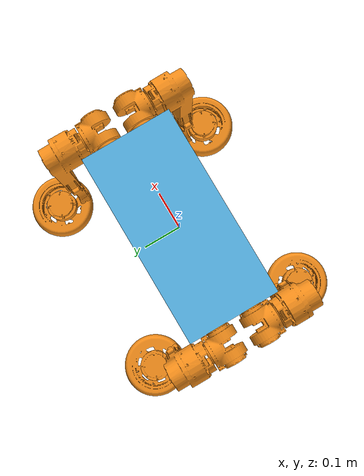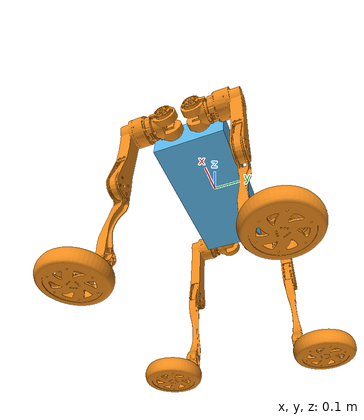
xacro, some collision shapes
<?xml version="1.0"?>

<robot xmlns:xacro="http://www.ros.org/wiki/xacro" name="sirius_wheel_description">

    <xacro:arg name="DEBUG" default="false"/>
    <xacro:include filename="$(find sirius_wheel_description)/xacro/materials.xacro"/>
    <xacro:include filename="$(find sirius_wheel_description)/xacro/leg_new_name.xacro"/>
    <xacro:include filename="$(find sirius_wheel_description)/xacro/gazebo.xacro"/>
    <xacro:include filename="$(find sirius_wheel_description)/xacro/const.xacro"/>
    <xacro:include filename="$(find sirius_wheel_description)/xacro/ros2_control.xacro"/>

    <xacro:if value="$(arg DEBUG)">
        <link name="world"/>
        <joint name="base_static_joint" type="fixed">
            <origin rpy="0 0 0" xyz="0 0 0"/>
            <parent link="world"/>
            <child link="base"/>
        </joint>
    </xacro:if>

    <link name="base">
        <visual>
            <origin rpy="0 0 0" xyz="0 0 0"/>
            <geometry>
                <box size="0.001 0.001 0.001"/>
            </geometry>
        </visual>
    </link>

    <joint name="floating_base" type="fixed">
        <origin rpy="0 0 0" xyz="0 0 0"/>
        <parent link="base"/>
        <child link="trunk"/>
    </joint>

    <link name="trunk">
        <visual>
            <origin rpy="0 0 0" xyz="-0 0 0"/>
            <geometry>
                <mesh filename="package://sirius_wheel_description/simplified_meshes/base_link.dae" scale="1 1 1"/>
            </geometry>
        </visual>
        <collision>
            <origin rpy="0 0 0" xyz="0 0 0"/>
            <geometry>
                <box size="${base_length} ${base_width} ${base_height}"/>
            </geometry>
        </collision>
        <collision>
            <origin rpy="0 0 0" xyz="0.418 0 0"/>
            <geometry>
                <box size="${base_head_length} ${base_head_width} ${base_head_height}"/>
            </geometry>
        </collision>
        <collision>
            <origin rpy="0 0 0" xyz="-0.4105 0 0"/>
            <geometry>
                <box size="${base_tail_length} ${base_tail_width} ${base_tail_height}"/>
            </geometry>
        </collision>
        <collision>
            <origin rpy="0 0 0" xyz="${base_contact_sphere_x} ${base_contact_sphere_y} ${base_contact_sphere_z}"/>
            <geometry>
                <sphere radius="${base_contact_sphere_radius}"/>
            </geometry>
        </collision>
        <collision>
            <origin rpy="0 0 0" xyz="${-base_contact_sphere_x} ${base_contact_sphere_y} ${base_contact_sphere_z}"/>
            <geometry>
                <sphere radius="${base_contact_sphere_radius}"/>
            </geometry>
        </collision>
        <collision>
            <origin rpy="0 0 0" xyz="${base_contact_sphere_x} ${-base_contact_sphere_y} ${base_contact_sphere_z}"/>
            <geometry>
                <sphere radius="${base_contact_sphere_radius}"/>
            </geometry>
        </collision>
        <collision>
            <origin rpy="0 0 0" xyz="${-base_contact_sphere_x} ${-base_contact_sphere_y} ${base_contact_sphere_z}"/>
            <geometry>
                <sphere radius="${base_contact_sphere_radius}"/>
            </geometry>
        </collision>

        <inertial>
            <origin rpy="0 0 0" xyz="${base_com_x} ${base_com_y} ${base_com_z}"/>
            <mass value="${base_mass}"/>
            <inertia
                    ixx="${base_ixx}" ixy="${base_ixy}" ixz="${base_ixz}"
                    iyy="${base_iyy}" iyz="${base_iyz}"
                    izz="${base_izz}"/>
        </inertial>
    </link>

    <joint name="imu_joint" type="fixed">
        <parent link="trunk"/>
        <child link="imu_link"/>
        <origin rpy="0 0 0" xyz="-0.01592 -0.06659 -0.00617"/>
    </joint>

    <link name="imu_link">
        <inertial>
            <mass value="0.001"/>
            <origin rpy="0 0 0" xyz="0 0 0"/>
            <inertia ixx="0.0001" ixy="0" ixz="0" iyy="0.0001" iyz="0" izz="0.0001"/>
        </inertial>
        <visual>
            <origin rpy="0 0 0" xyz="0 0 0"/>
            <geometry>
                <box size="0.001 0.001 0.001"/>
            </geometry>
        </visual>
        <collision>
            <origin rpy="0 0 0" xyz="0 0 0"/>
            <geometry>
                <box size=".001 .001 .001"/>
            </geometry>
        </collision>
    </link>

    <xacro:leg prefix="fr" left_right_bool="False" left_right_mirror="-1"
               front_hind_bool="True" front_hind_mirror="1">
        <origin rpy="0 0 0" xyz="${leg_origin_x} ${-leg_origin_y} 0"/>
    </xacro:leg>

    <xacro:leg prefix="fl" left_right_bool="True" left_right_mirror="1" front_hind_bool="True"
               front_hind_mirror="1">
        <origin rpy="0 0 0" xyz="${leg_origin_x} ${leg_origin_y} 0"/>
    </xacro:leg>

    <xacro:leg prefix="rr" left_right_bool="False" left_right_mirror="-1"
               front_hind_bool="False" front_hind_mirror="-1">
        <origin rpy="0 0 0" xyz="${-leg_origin_x} ${-leg_origin_y} 0"/>
    </xacro:leg>

    <xacro:leg prefix="rl" left_right_bool="True" left_right_mirror="1" front_hind_bool="False"
               front_hind_mirror="-1">
        <origin rpy="0 0 0" xyz="${-leg_origin_x} ${leg_origin_y} 0"/>
    </xacro:leg>

</robot>

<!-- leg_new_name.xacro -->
<robot xmlns:xacro="http://www.ros.org/wiki/xacro">
    <xacro:include filename="$(find sirius_wheel_description)/xacro/transmission.xacro"/>

    <!--    left for true, front for true-->
    <xacro:macro name="leg"
                 params="prefix left_right_bool front_hind_bool left_right_mirror front_hind_mirror *origin">

        <!--       *********************************** abad description *************8-->
        <joint name="${prefix}_abad_joint" type="revolute">
            <!--            insert start block from parent file-->
            <xacro:insert_block name="origin"/>
            <parent link="trunk"/>
            <child link="${prefix}_hip"/>
            <axis xyz="1 0 0"/>
            <dynamics damping="${damping}" friction="${friction}"/>
            <limit effort="${abad_torque_max}" velocity="${abad_velocity_max}" lower="${abad_position_min}"
                   upper="${abad_position_max}"/>
        </joint>

        <link name="${prefix}_hip">
            <visual>
                <origin rpy="0 0 0" xyz="0 0 0"/>
                <geometry>
                    <xacro:if value="${(left_right_bool == True) and (front_hind_bool == True)}">
                        <mesh filename="package://sirius_wheel_description/simplified_meshes/fl_abad_link.dae"
                              scale="1 1 1"/>
                    </xacro:if>
                    <xacro:if value="${(left_right_bool == False) and (front_hind_bool == True)}">
                        <mesh filename="package://sirius_wheel_description/simplified_meshes/fr_abad_link.dae"
                              scale="1 1 1"/>
                    </xacro:if>
                    <xacro:if value="${(left_right_bool == True) and (front_hind_bool == False)}">
                        <mesh filename="package://sirius_wheel_description/simplified_meshes/rl_abad_link.dae"
                              scale="1 1 1"/>
                    </xacro:if>
                    <xacro:if value="${(left_right_bool == False) and (front_hind_bool == False)}">
                        <mesh filename="package://sirius_wheel_description/simplified_meshes/rr_abad_link.dae"
                              scale="1 1 1"/>
                    </xacro:if>
                </geometry>
                <material name="orange"/>
            </visual>
                    <collision>
                        <origin rpy="${pi/2} 0 0"
                                   xyz="${abad_origin_x*front_hind_mirror} ${abad_origin_y*left_right_mirror} 0"/>
                        <geometry>
                            <cylinder length="${abad_length}" radius="${abad_radius}"/>
                        </geometry>
                    </collision>

            <!--            tochange here-->
            <inertial>
                <origin rpy="0 0 0"
                        xyz="${abad_com_x*front_hind_mirror} ${abad_com_y*left_right_mirror} ${abad_com_z}"/>
                <mass value="${abad_mass}"/>
                <inertia
                        ixx="${abad_ixx}" ixy="${abad_ixy*front_hind_mirror*left_right_mirror}"
                        ixz="${abad_ixz*front_hind_mirror}"
                        iyy="${abad_iyy}" iyz="${abad_iyz*left_right_mirror}"
                        izz="${abad_izz}"/>
            </inertial>
        </link>

        <!--        *************************************** hip description ******************************************************-->

        <joint name="${prefix}_hip_joint" type="revolute">
            <origin rpy="0 0 0" xyz="${hip_origin_x*front_hind_mirror} ${hip_origin_y*left_right_mirror} 0"/>
            <parent link="${prefix}_hip"/>
            <child link="${prefix}_thigh"/>
            <axis xyz="0 1 0"/>
            <dynamics damping="${damping}" friction="${friction}"/>
            <limit effort="${hip_torque_max}" velocity="${hip_velocity_max}" lower="${hip_position_min}"
                   upper="${hip_position_max}"/>
        </joint>

        <link name="${prefix}_thigh">
            <visual>
                <origin rpy="0 0 0" xyz="0 0 0"/>
                <geometry>
                    <xacro:if value="${(left_right_bool == True) and (front_hind_bool == True)}">
                        <mesh filename="package://sirius_wheel_description/simplified_meshes/fl_hip_link.dae"
                              scale="1 1 1"/>
                    </xacro:if>
                    <xacro:if value="${(left_right_bool == False) and (front_hind_bool == True)}">
                        <mesh filename="package://sirius_wheel_description/simplified_meshes/fr_hip_link.dae"
                              scale="1 1 1"/>
                    </xacro:if>
                    <xacro:if value="${(left_right_bool == True) and (front_hind_bool == False)}">
                        <mesh filename="package://sirius_wheel_description/simplified_meshes/rl_hip_link.dae"
                              scale="1 1 1"/>
                    </xacro:if>
                    <xacro:if value="${(left_right_bool == False) and (front_hind_bool == False)}">
                        <mesh filename="package://sirius_wheel_description/simplified_meshes/rr_hip_link.dae"
                              scale="1 1 1"/>
                    </xacro:if>
                </geometry>
                <material name="orange"/>
            </visual>

            <collision>
                <origin rpy="${pi/2} 0 0"
                        xyz="0 0 0"/>
                <geometry>
                    <cylinder length="${hip_shoulder_length}" radius="${hip_shoulder_radius}"/>
                </geometry>
            </collision>
            <collision>
                <origin rpy="${pi/2} 0 0"
                        xyz="0 ${hip_shoulder2_y_offset*left_right_mirror} 0"/>
                <geometry>
                    <cylinder length="${hip_shoulder2_length}" radius="${hip_shoulder2_radius}"/>
                </geometry>
            </collision>
            <collision>
                <origin rpy="0 ${(90)/180*pi} 0"
                        xyz="${hip_x_offset} 0 ${hip_z_offset}"/>
                <geometry>
                    <box size="${hip_length} ${hip_width} ${hip_height}"/>
                </geometry>
            </collision>

            <inertial>
                <origin rpy="0 0 0" xyz="${hip_com_x*front_hind_mirror} ${hip_com_y*left_right_mirror} ${hip_com_z}"/>
                <mass value="${hip_mass}"/>
                <inertia
                        ixx="${hip_ixx}" ixy="${hip_ixy*left_right_mirror}" ixz="${hip_ixz}"
                        iyy="${hip_iyy}" iyz="${hip_iyz*left_right_mirror}"
                        izz="${hip_izz}"/>
            </inertial>
        </link>

        <!--************************************************ knee description ***********************************************************8-->
        <joint name="${prefix}_knee_joint" type="revolute">
            <origin rpy="0 0 0"
                    xyz="${knee_origin_x*front_hind_mirror} ${knee_origin_y*left_right_mirror} ${knee_origin_z}"/>
            <parent link="${prefix}_thigh"/>
            <child link="${prefix}_calf"/>
            <axis xyz="0 1 0"/>
            <dynamics damping="${damping}" friction="${friction}"/>
            <limit effort="${knee_torque_max}" velocity="${knee_velocity_max}" lower="${knee_position_min}"
                   upper="${knee_position_max}"/>
        </joint>

        <link name="${prefix}_calf">
            <visual>
                <origin rpy="0 0 0" xyz="0 0 0"/>
                <geometry>
                    <xacro:if value="${(left_right_bool == True) and (front_hind_bool == True)}">
                        <mesh filename="package://sirius_wheel_description/simplified_meshes/fl_knee_link.dae"
                              scale="1 1 1"/>
                    </xacro:if>
                    <xacro:if value="${(left_right_bool == False) and (front_hind_bool == True)}">
                        <mesh filename="package://sirius_wheel_description/simplified_meshes/fr_knee_link.dae"
                              scale="1 1 1"/>
                    </xacro:if>
                    <xacro:if value="${(left_right_bool == True) and (front_hind_bool == False)}">
                        <mesh filename="package://sirius_wheel_description/simplified_meshes/rl_knee_link.dae"
                              scale="1 1 1"/>
                    </xacro:if>
                    <xacro:if value="${(left_right_bool == False) and (front_hind_bool == False)}">
                        <mesh filename="package://sirius_wheel_description/simplified_meshes/rr_knee_link.dae"
                              scale="1 1 1"/>
                    </xacro:if>
                </geometry>
                <material name="orange"/>
            </visual>
            <collision>
                <origin rpy="0 0 0" xyz="0 0 0"/>
                <geometry>
                    <xacro:if value="${(left_right_bool == True) and (front_hind_bool == True)}">
                        <mesh filename="package://sirius_wheel_description/simplified_meshes/fl_knee_link.dae"
                              scale="1 1 1"/>
                    </xacro:if>
                    <xacro:if value="${(left_right_bool == False) and (front_hind_bool == True)}">
                        <mesh filename="package://sirius_wheel_description/simplified_meshes/fr_knee_link.dae"
                              scale="1 1 1"/>
                    </xacro:if>
                    <xacro:if value="${(left_right_bool == True) and (front_hind_bool == False)}">
                        <mesh filename="package://sirius_wheel_description/simplified_meshes/rl_knee_link.dae"
                              scale="1 1 1"/>
                    </xacro:if>
                    <xacro:if value="${(left_right_bool == False) and (front_hind_bool == False)}">
                        <mesh filename="package://sirius_wheel_description/simplified_meshes/rr_knee_link.dae"
                              scale="1 1 1"/>
                    </xacro:if>
                </geometry>
            </collision>

            <inertial>
                <origin rpy="0 0 0" xyz="${knee_com_x} ${knee_com_y} ${knee_com_z}"/>
                <mass value="${knee_mass}"/>
                <inertia
                        ixx="${knee_ixx}" ixy="${knee_ixy}" ixz="${knee_ixz}"
                        iyy="${knee_iyy}" iyz="${knee_iyz}"
                        izz="${knee_izz}"/>
            </inertial>
        </link>

        <!--       ******************************* foot description ********************************8-->
        <joint name="${prefix}_foot_fixed" type="fixed">
            <origin rpy="-1.57 0 ${-1.57+left_right_mirror*1.57}" xyz="${-0.01*front_hind_mirror} ${0.07825*left_right_mirror} -0.29973"/>
            <parent link="${prefix}_calf"/>
            <child link="${prefix}_WHEEL_LINK"/>
        </joint>

        <link name="${prefix}_WHEEL_LINK">
            <visual>
                    <origin rpy="0.0 0 0" xyz="0 0 0"/>
                <geometry>
                        <mesh filename="package://sirius_wheel_description/simplified_meshes/wheel_motor.STL"
                              scale="1 1 1"/>
                </geometry>
                <material name="orange"/>
            </visual>
            <inertial>
                <origin rpy="0 0 0" xyz="${wheel_motor_com_x} ${wheel_motor_com_y} ${wheel_motor_com_z}"/>
                <mass value="${wheel_motor_mass}"/>
                <inertia
                        ixx="${wheel_motor_ixx}" ixy="${wheel_motor_ixy}" ixz="${wheel_motor_ixz}"
                        iyy="${wheel_motor_iyy}" iyz="${wheel_motor_iyz}"
                        izz="${wheel_motor_izz}"/>
            </inertial>
        </link>
        <!--        ************************** wheel description ***********************************************8-->
        <joint name="${prefix}_wheel_joint" type="revolute">
            <origin rpy="0 0 0" xyz="0 0 0"/>
            <parent link="${prefix}_WHEEL_LINK"/>
            <child link="${prefix}_FOOT"/>
            <axis xyz="0 0 ${1*left_right_mirror}"/>
            <dynamics damping="${damping}" friction="${friction}"/>
            <limit effort="${wheel_torque_max}" velocity="${wheel_velocity_max}" lower="${wheel_position_min}"
                   upper="${wheel_position_max}"/>
        </joint>

        <link name="${prefix}_FOOT">
            <visual>
                    <origin rpy="0 0 0" xyz="0 0 0"/>
                <geometry>
                        <mesh filename="package://sirius_wheel_description/simplified_meshes/wheel_link.STL"
                              scale="1 1 1"/>
                </geometry>
                <material name="orange"/>
            </visual>
            <collision>
                <origin rpy="0 0 0" xyz="0 0 ${wheel_origin_z}"/>
                <geometry>
                    <cylinder length="${wheel_length}" radius="${wheel_radius}"/>
                </geometry>
            </collision>
            <inertial>
                <origin rpy="0 0 0" xyz="${wheel_com_x} ${wheel_com_y} ${wheel_com_z}"/>
                <mass value="${wheel_mass}"/>
                <inertia
                        ixx="${wheel_ixx}" ixy="${wheel_ixy}" ixz="${wheel_ixz}"
                        iyy="${wheel_iyy}" iyz="${wheel_iyz}"
                        izz="${wheel_izz}"/>
            </inertial>
        </link>

        <!--        ************************** gazebo setting ***********************************************8-->
        <gazebo reference="${prefix}_foot_fixed">
            <disableFixedJointLumping>true</disableFixedJointLumping>
        </gazebo>

        <gazebo reference="${prefix}_hip">
        </gazebo>
        <gazebo reference="${prefix}_thigh">
            <mu1>0.6</mu1>
            <mu2>0.6</mu2>
            <self_collide>0</self_collide>
            <material>Gazebo/DarkGrey</material>
            <kp value="100000.0"/>
            <kd value="1.0"/>
        </gazebo>
        <gazebo reference="${prefix}_calf">
            <mu1>0.6</mu1>
            <mu2>0.6</mu2>
            <self_collide>1</self_collide>
            <material>Gazebo/DarkGrey</material>
            <kp value="100000.0"/>
            <kd value="1.0"/>
            <maxVel>10.0</maxVel>
            <minDepth>0.001</minDepth>
        </gazebo>
        <gazebo reference="${prefix}_FOOT">
            <mu1>0.6</mu1>
            <mu2>0.6</mu2>
            <self_collide>1</self_collide>
            <material>Gazebo/DarkGrey</material>
            <kp value="100000.0"/>
            <kd value="1.0"/>
        </gazebo>
        <xacro:leg_transmission name="${prefix}"/>
    </xacro:macro>
</robot>

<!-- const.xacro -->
<robot xmlns:xacro="http://www.ros.org/wiki/xacro" name="sirius_wheel_description">

    <!-- Constants for robot dimensions -->
    <xacro:property name="stick_mass" value="0.00001"/>

    <!-- simplified collision value -->
    <xacro:property name="base_width" value="0.250"/>
    <xacro:property name="base_length" value="0.525"/>
    <xacro:property name="base_height" value="0.114"/>
    <xacro:property name="base_head_width" value="0.210"/>
    <xacro:property name="base_head_length" value="0.105"/>
    <xacro:property name="base_head_height" value="0.160"/>
    <xacro:property name="base_tail_width" value="0.210"/>
    <xacro:property name="base_tail_length" value="0.090"/>
    <xacro:property name="base_tail_height" value="0.160"/>
    <xacro:property name="base_contact_sphere_x" value="0.3905"/>
    <xacro:property name="base_contact_sphere_y" value="-0.060"/>
    <xacro:property name="base_contact_sphere_z" value="-0.0718"/>
    <xacro:property name="base_contact_sphere_radius" value="0.020"/>

    <xacro:property name="abad_origin_x" value="0.0"/>
    <xacro:property name="abad_origin_y" value="0.03"/>
    <xacro:property name="abad_radius" value="0.055"/>
    <xacro:property name="abad_length" value="0.09"/>

    <xacro:property name="wheel_origin_z" value="-0.024"/>
    <xacro:property name="wheel_radius" value="0.10025"/>
    <xacro:property name="wheel_length" value="0.05"/>

    <xacro:property name="hip_shoulder_radius" value="0.0375"/>
    <xacro:property name="hip_shoulder_length" value="0.039"/>
    <xacro:property name="hip_shoulder_y_offset" value="0.05735"/>
    <xacro:property name="hip_shoulder2_radius" value="0.05"/>
    <xacro:property name="hip_shoulder2_length" value="0.048"/>
    <xacro:property name="hip_shoulder2_y_offset" value="-0.04"/>
    <xacro:property name="hip_width" value="0.05"/>
    <xacro:property name="hip_height" value="0.05"/>
    <xacro:property name="hip_x_offset" value="0"/>
    <xacro:property name="hip_y_offset" value="0.1282"/>
    <xacro:property name="hip_z_offset" value="-0.1382"/>

    <xacro:property name="knee_joint_radius" value="0.04"/>
    <xacro:property name="knee_joint_length" value="0.04"/>
    <xacro:property name="knee_width" value="0.02"/>
    <xacro:property name="knee_height" value="0.02"/>
    <xacro:property name="knee_x_offset" value="-0.0"/>
    <xacro:property name="knee_z_offset" value="-0.0955"/>
    <xacro:property name="foot_radius" value="0.065"/>

    <!-- kinematic value -->
    <xacro:property name="hip_length" value="0.2159"/>
    <xacro:property name="knee_length" value="0.25153"/>
    <xacro:property name="knee_circle_x" value="0.02121"/>

    <!-- leg offset from trunk center value -->
    <xacro:property name="leg_origin_x" value="0.314"/>
    <xacro:property name="leg_origin_y" value="0.050"/>
    <xacro:property name="hip_origin_x" value="0"/>
    <xacro:property name="hip_origin_y" value="0.1408"/>
    <xacro:property name="knee_origin_x" value="0.0"/>
    <xacro:property name="knee_origin_y" value="0.0"/>
    <xacro:property name="knee_origin_z" value="-0.272"/>

    <!-- joint limits -->
    <xacro:property name="damping" value="0"/>
    <xacro:property name="friction" value="0.01"/>
    <xacro:property name="abad_position_max" value="${46*pi/180.0}"/>
    <xacro:property name="abad_position_min" value="${-46*pi/180.0}"/>
    <xacro:property name="abad_velocity_max" value="21"/>
    <xacro:property name="abad_torque_max" value="45"/>
    <xacro:property name="hip_position_max" value="${240*pi/180.0}"/>
    <xacro:property name="hip_position_min" value="${-240*pi/180.0}"/>
    <xacro:property name="hip_velocity_max" value="21"/>
    <xacro:property name="hip_torque_max" value="45"/>
    <xacro:property name="knee_position_max" value="${154.5*pi/180.0}"/>
    <xacro:property name="knee_position_min" value="${-154.5*pi/180.0}"/>
    <xacro:property name="knee_velocity_max" value="15"/>
    <xacro:property name="knee_torque_max" value="80"/>
    <xacro:property name="wheel_position_max" value="${1000000*pi/180.0}"/>
    <xacro:property name="wheel_position_min" value="${-1000000*pi/180.0}"/>
    <xacro:property name="wheel_velocity_max" value="21"/>
    <xacro:property name="wheel_torque_max" value="45"/>

    <!-- dynamics inertial value -->
    <!-- trunk -->
    <xacro:property name="base_mass" value="21.5654"/>
    <xacro:property name="base_com_x" value="0.02677303"/>
    <xacro:property name="base_com_y" value="0.000"/>
    <xacro:property name="base_com_z" value="0.00632505"/>
    <xacro:property name="base_ixx" value="0.10767656"/>
    <xacro:property name="base_ixy" value="0.00000033"/>
    <xacro:property name="base_ixz" value="-0.00871520"/>
    <xacro:property name="base_iyy" value="2.82545726"/>
    <xacro:property name="base_iyz" value="-0.00000024"/>
    <xacro:property name="base_izz" value="2.85571634"/>

    <!-- abad (left front) -->
    <xacro:property name="abad_mass" value="0.7766"/>
    <xacro:property name="abad_com_x" value="0.00001787"/>
    <xacro:property name="abad_com_y" value="0.00607236"/>
    <xacro:property name="abad_com_z" value="-0.00008968"/>
    <xacro:property name="abad_ixx" value="0.00066364"/>
    <xacro:property name="abad_ixy" value="0.000000"/>
    <xacro:property name="abad_ixz" value="0"/>
    <xacro:property name="abad_iyy" value="0.00093712"/>
    <xacro:property name="abad_iyz" value="0.00000289"/>
    <xacro:property name="abad_izz" value="0.00106375"/>

    <!-- hip -->
    <xacro:property name="hip_mass" value="2.1028"/>
    <xacro:property name="hip_com_x" value="-0.00142243"/>
    <xacro:property name="hip_com_y" value="-0.02451835"/>
    <xacro:property name="hip_com_z" value="-0.06737031"/>
    <xacro:property name="hip_ixx" value="0.03392455"/>
    <xacro:property name="hip_ixy" value="-0.00001021"/>
    <xacro:property name="hip_ixz" value="-0.00038283"/>
    <xacro:property name="hip_iyy" value="0.03116088"/>
    <xacro:property name="hip_iyz" value="-0.00004690"/>
    <xacro:property name="hip_izz" value="0.00483256"/>

    <!-- knee -->
    <xacro:property name="knee_mass" value="0.3292"/>
    <xacro:property name="knee_com_x" value="-0.00804831"/>
    <xacro:property name="knee_com_y" value="0.00000107"/>
    <xacro:property name="knee_com_z" value="-0.12689414"/>
    <xacro:property name="knee_ixx" value="0.01527064"/>
    <xacro:property name="knee_ixy" value="0.0"/>
    <xacro:property name="knee_ixz" value="-0.00063844"/>
    <xacro:property name="knee_iyy" value="0.01543121"/>
    <xacro:property name="knee_iyz" value="0.00000002"/>
    <xacro:property name="knee_izz" value="0.00022068"/>

    <!-- wheel_motor -->
    <xacro:property name="wheel_motor_mass" value="0.935"/>
    <xacro:property name="wheel_motor_com_x" value="-0.000"/>
    <xacro:property name="wheel_motor_com_y" value="-0.00173"/>
    <xacro:property name="wheel_motor_com_z" value="-0.022607"/>
    <xacro:property name="wheel_motor_ixx" value="0.001"/>
    <xacro:property name="wheel_motor_ixy" value="0.0"/>
    <xacro:property name="wheel_motor_ixz" value="0.00"/>
    <xacro:property name="wheel_motor_iyy" value="0.001"/>
    <xacro:property name="wheel_motor_iyz" value="0.00000000"/>
    <xacro:property name="wheel_motor_izz" value="0.001251289"/>

    <!-- wheel -->
    <xacro:property name="wheel_mass" value="0.75"/>
    <xacro:property name="wheel_com_x" value="-0.000"/>
    <xacro:property name="wheel_com_y" value="-0.000"/>
    <xacro:property name="wheel_com_z" value="-0.015388"/>
    <xacro:property name="wheel_ixx" value="0.002544029"/>
    <xacro:property name="wheel_ixy" value="0.0"/>
    <xacro:property name="wheel_ixz" value="0.0"/>
    <xacro:property name="wheel_iyy" value="0.002544029"/>
    <xacro:property name="wheel_iyz" value="0.0"/>
    <xacro:property name="wheel_izz" value="0.004774661"/>

</robot>
